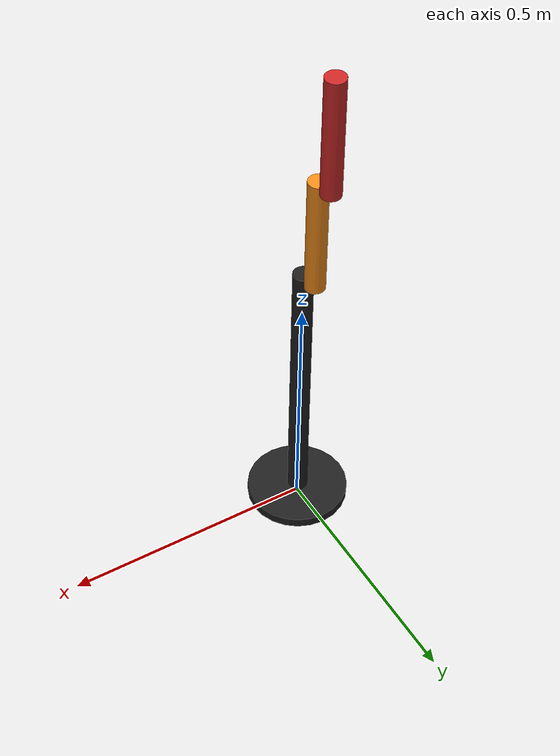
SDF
<?xml version="1.0"?>

<sdf version='1.4'>

  <model name="planar_robot">
    <static>false</static>

    <link name='world'/>

    <!-- Base link -->
    <link name='base_link'>
      <pose>0 0 0 0 0 0</pose>

      <inertial>
        <pose>0 0 0.00099 0 0 0</pose>
        <inertia>
          <ixx>1.11</ixx>
          <ixy>0</ixy>
          <ixz>0</ixz>
          <iyy>100.11</iyy>
          <iyz>0</iyz>
          <izz>1.01</izz>
        </inertia>
        <mass>101.0</mass>
      </inertial>

      <collision name='base_collision'>
        <pose>0 0 0.01 0 0 0</pose>
        <geometry>
          <cylinder>
            <radius>0.1</radius>
            <length>0.02</length>
          </cylinder>
        </geometry>
      </collision>

      <visual name='base_visual'>
        <pose>0 0 0.01 0 0 0</pose>
        <geometry>
          <cylinder>
            <radius>0.1</radius>
            <length>0.02</length>
          </cylinder>
        </geometry>
        <material>
          <script>
            <uri>file://media/materials/scripts/gazebo.material</uri>
            <name>Gazebo/Black</name>
          </script>
        </material>
      </visual>

      <collision name="base_trunk_collision">
        <pose>0 0 0.3 0 0 0</pose>
        <geometry>
          <cylinder>
            <radius>0.02</radius>
            <length>0.6</length>
          </cylinder>
        </geometry>
      </collision>

      <visual name="base_trunk_visual">
        <pose>0 0 0.3 0 0 0</pose>
        <geometry>
          <cylinder>
            <radius>0.02</radius>
            <length>0.6</length>
          </cylinder>
        </geometry>
        <material>
          <script>
            <uri>file://media/materials/scripts/gazebo.material</uri>
            <name>Gazebo/Black</name>
          </script>
        </material>
      </visual>

    </link>

    <joint name="joint_base" type="fixed">
      <pose>0 0 0 0 0 0</pose>
        <child>base_link</child>
        <parent>world</parent>
        <axis>
          <xyz>0 0 0</xyz>
        </axis>
    </joint>

    <!-- link 1 -->
    <link name='link_1'>
      <pose>0 0.04 0.725 0 0 0</pose>

      <inertial>
        <pose>0 0 0.00099 0 0 0</pose>
        <inertia>
          <ixx>0</ixx>
          <ixy>0</ixy>
          <ixz>0</ixz>
          <iyy>0.0104</iyy>
          <iyz>0</iyz>
          <izz>0</izz>
        </inertia>
        <mass>0.5</mass>
      </inertial>

      <collision name='link1_collision'>
        <geometry>
          <cylinder>
            <radius>0.02</radius>
            <length>0.25</length>
          </cylinder>
        </geometry>
      </collision>

      <visual name='link1_visual'>
        <geometry>
          <cylinder>
            <radius>0.02</radius>
            <length>0.25</length>
          </cylinder>
        </geometry>
        <material>
          <script>
            <uri>file://media/materials/scripts/gazebo.material</uri>
            <name>Gazebo/Orange</name>
          </script>
        </material>
      </visual>
    </link>

    <joint name="joint_1" type="revolute">
      <pose>0 0 -0.125 0 0 0</pose>
        <child>link_1</child>
        <parent>base_link</parent>
        <axis>
          <dynamics>
            <damping>0.001</damping>
            <friction>0.000</friction>
          </dynamics>
          <xyz>0 1 0</xyz>
        </axis>
    </joint>

    <!--link 2 -->
    <link name='link_2'>
      <pose>0 0.08 0.975 0 0 0</pose>

      <inertial>
        <pose>0 0 0.00099 0 0 0</pose>
        <inertia>
          <ixx>0</ixx>
          <ixy>0</ixy>
          <ixz>0</ixz>
          <iyy>0.0104</iyy>
          <iyz>0</iyz>
          <izz>0</izz>
        </inertia>
        <mass>0.5</mass>
      </inertial>

      <collision name='link2_collision'>
        <geometry>
          <cylinder>
            <radius>0.02</radius>
            <length>0.25</length>
          </cylinder>
        </geometry>
      </collision>

      <visual name='link2_visual'>
        <geometry>
          <cylinder>
            <radius>0.02</radius>
            <length>0.25</length>
          </cylinder>
        </geometry>
        <material>
          <script>
            <uri>file://media/materials/scripts/gazebo.material</uri>
            <name>Gazebo/Red</name>
          </script>
        </material>
      </visual>
    </link>

    <joint name="joint_2" type="revolute">
      <pose>0 0 -0.125 0 0 0</pose>
        <child>link_2</child>
        <parent>link_1</parent>
        <axis>
          <dynamics>
            <damping>0.001</damping>
            <friction>0.000</friction>
          </dynamics>
          <xyz>0 1 0</xyz>
        </axis>
    </joint>

    <plugin name="gazebo_ros_control" filename="libgazebo_ros_control.so">
      <robotNamespace>/planar_robot</robotNamespace>
    </plugin>

    <!-- transmission -->
    <transmission name="joint_1_trans">
      <type>transmission_interface/SimpleTransmission</type>
      <actuator name="motor1">
        <mechanicalReduction>1</mechanicalReduction>
      </actuator>
      <joint name="joint_1">
        <hardwareInterface>EffortJointInterface</hardwareInterface>
      </joint>
    </transmission>

    <transmission name="joint_2_trans">
      <type>transmission_interface/SimpleTransmission</type>
      <actuator name="motor2">
        <mechanicalReduction>1</mechanicalReduction>
      </actuator>
      <joint name="joint_2">
        <hardwareInterface>EffortJointInterface</hardwareInterface>
      </joint>
    </transmission>

  </model>

</sdf>
